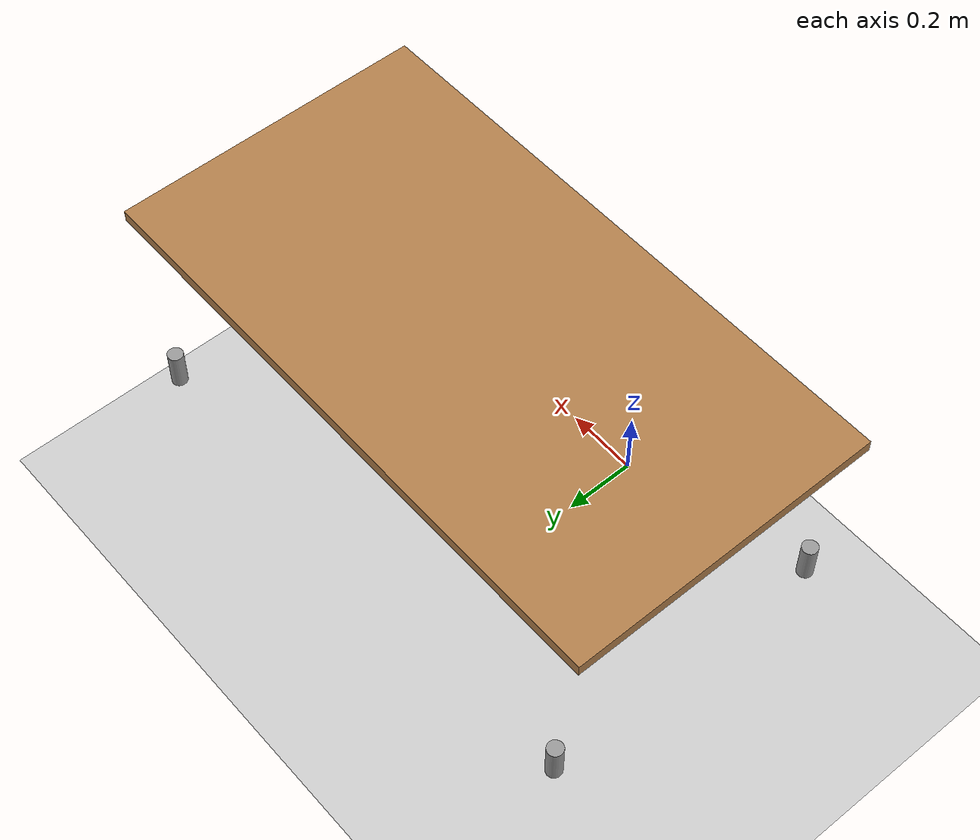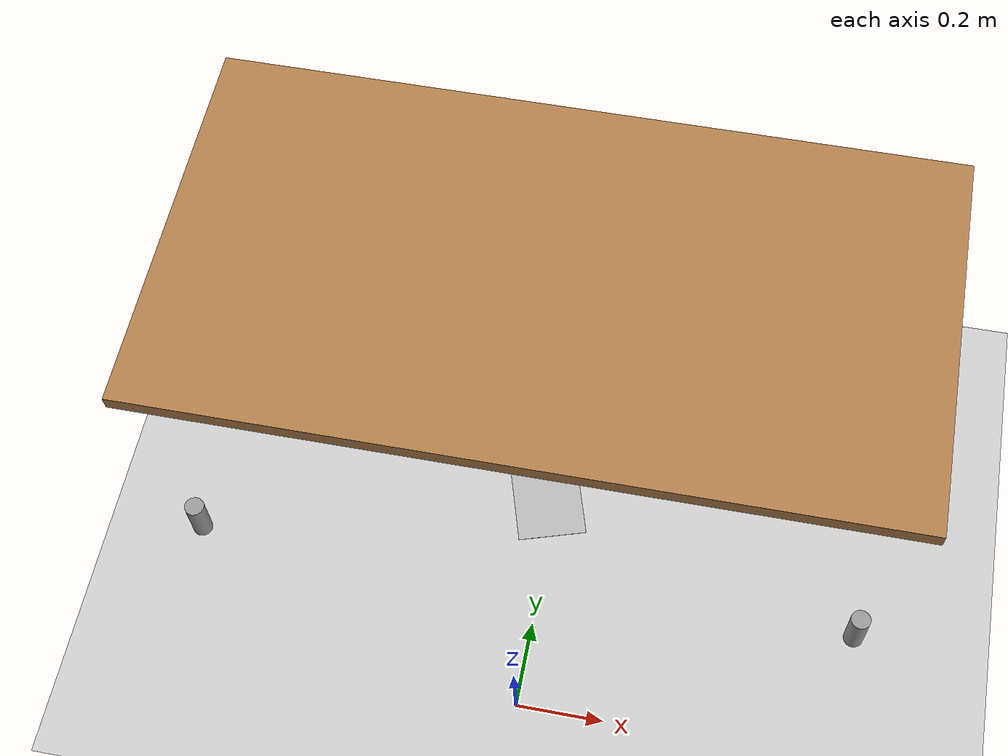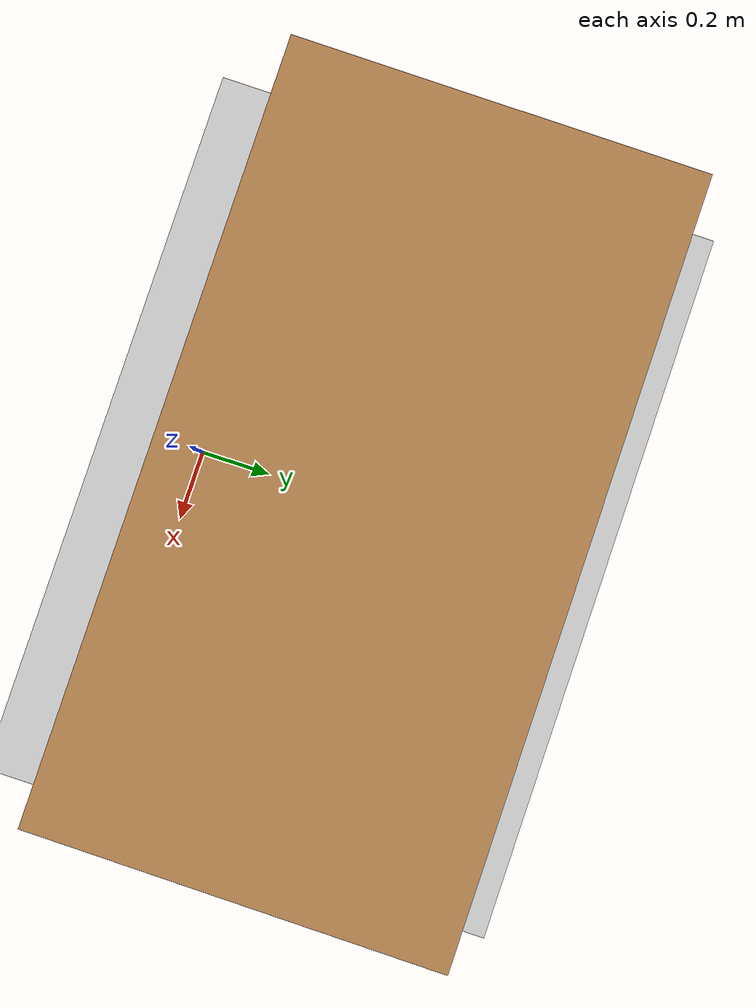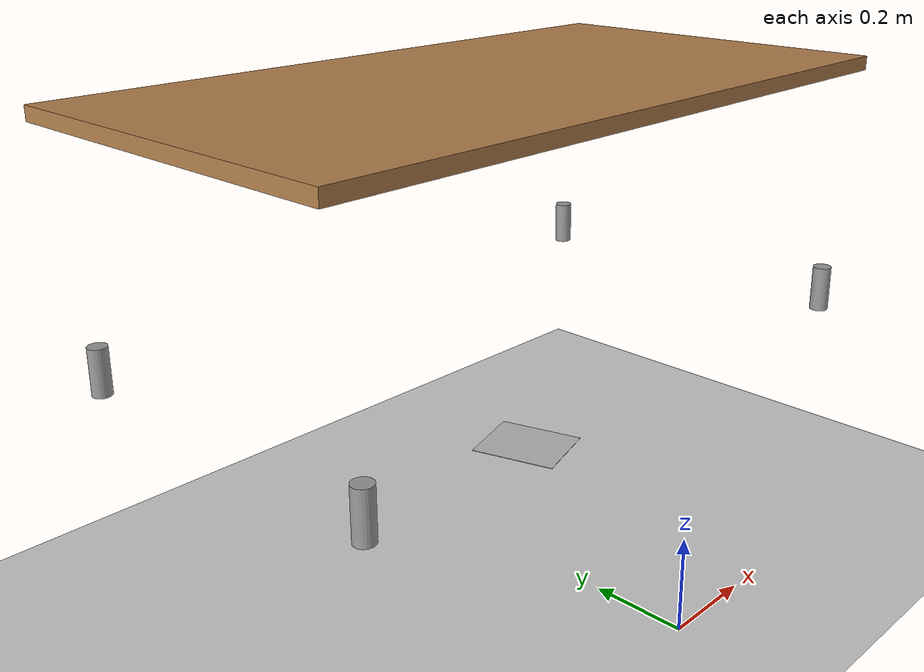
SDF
<sdf version="1.4">
 <world name="default">
  <include><uri>model://ground_plane</uri></include>
  <include><uri>model://sun</uri></include>
  <include>
   <uri>model://table_short</uri>
   <name>table</name>
   <pose>0 0.5 0 0 0 0</pose>
   <static>1</static>
  </include>
  <include><uri>model://tomato</uri><pose>0 0.4 0.26 0 0 0.3</pose></include>
  <physics name="default_physics" default="0" type="ode">
   <max_step_size>0.01</max_step_size>
   <real_time_factor>1</real_time_factor>
   <real_time_update_rate>100</real_time_update_rate>
   <ode>
    <solver>
     <type>quick</type>
     <iters>50</iters>
     <sor>1.0</sor>
     <use_dynamic_moi_rescaling>false</use_dynamic_moi_rescaling>
    </solver>
   </ode>
  </physics>
 </world>
</sdf>

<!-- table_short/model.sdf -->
<sdf version="1.5">
  <model name="table">
    <static>true</static>
    <link name="link">
      <collision name="surface">
        <pose>0 0 1.0 0 0 0</pose>
        <geometry>
          <box>
            <size>1.5 0.8 0.03</size>
          </box>
        </geometry>
        <surface>
          <friction>
            <ode>
              <mu>0.6</mu>
              <mu2>0.6</mu2>
            </ode>
          </friction>
        </surface>
      </collision>
      <visual name="visual1">
        <pose>0 0 1.0 0 0 0</pose>
        <geometry>
          <box>
            <size>1.5 0.8 0.03</size>
          </box>
        </geometry>
        <material>
          <script>
            <uri>file://media/materials/scripts/gazebo.material</uri>
            <name>Gazebo/Wood</name>
          </script>
        </material>
      </visual>
      <collision name="front_left_leg">
        <pose>0.68 0.38 0.5 0 0 0</pose>
        <geometry>
          <cylinder>
            <radius>0.02</radius>
            <length>0.10</length>
          </cylinder>
        </geometry>
      </collision>
      <visual name="front_left_leg">
        <pose>0.68 0.38 0.5 0 0 0</pose>
        <geometry>
          <cylinder>
            <radius>0.02</radius>
            <length>0.10</length>
          </cylinder>
        </geometry>
        <material>
          <script>
            <uri>file://media/materials/scripts/gazebo.material</uri>
            <name>Gazebo/Grey</name>
          </script>
        </material>
      </visual>
      <collision name="front_right_leg">
        <pose>0.68 -0.38 0.5 0 0 0</pose>
        <geometry>
          <cylinder>
            <radius>0.02</radius>
            <length>0.10</length>
          </cylinder>
        </geometry>
      </collision>
      <visual name="front_right_leg">
        <pose>0.68 -0.38 0.5 0 0 0</pose>
        <geometry>
          <cylinder>
            <radius>0.02</radius>
            <length>0.10</length>
          </cylinder>
        </geometry>
        <material>
          <script>
            <uri>file://media/materials/scripts/gazebo.material</uri>
            <name>Gazebo/Grey</name>
          </script>
        </material>
      </visual>
      <collision name="back_right_leg">
        <pose>-0.68 -0.38 0.5 0 0 0</pose>
        <geometry>
          <cylinder>
            <radius>0.02</radius>
            <length>0.10</length>
          </cylinder>
        </geometry>
      </collision>
      <visual name="back_right_leg">
        <pose>-0.68 -0.38 0.5 0 0 0</pose>
        <geometry>
          <cylinder>
            <radius>0.02</radius>
            <length>0.10</length>
          </cylinder>
        </geometry>
        <material>
          <script>
            <uri>file://media/materials/scripts/gazebo.material</uri>
            <name>Gazebo/Grey</name>
          </script>
        </material>
      </visual>
      <collision name="back_left_leg">
        <pose>-0.68 0.38 0.5 0 0 0</pose>
        <geometry>
          <cylinder>
            <radius>0.02</radius>
            <length>0.10</length>
          </cylinder>
        </geometry>
      </collision>
      <visual name="back_left_leg">
        <pose>-0.68 0.38 0.5 0 0 0</pose>
        <geometry>
          <cylinder>
            <radius>0.02</radius>
            <length>0.10</length>
          </cylinder>
        </geometry>
        <material>
          <script>
            <uri>file://media/materials/scripts/gazebo.material</uri>
            <name>Gazebo/Grey</name>
          </script>
        </material>
      </visual>
    </link>
  </model>
</sdf>

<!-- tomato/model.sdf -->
<sdf version="1.4">
  <model name="tomato">
    <static>false</static>
    <link name="link">
      <collision name="collision">
        <geometry>
          <box>
            <size>0.15 0.18 0.001</size>
          </box>
        </geometry>
      </collision>
      <visual name="visual">
        <geometry>
          <box>
            <size>0.15 0.18 0.001</size>
          </box>
        </geometry>
	<material>
          <script>
            <uri>file://models/tomato/materials/scripts/custom.material</uri>
            <name>Custom/Tomato</name>
          </script>
        </material>
      </visual>
    </link>
  </model>
</sdf>
